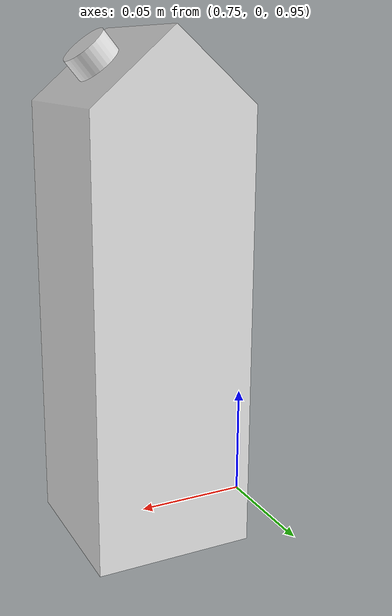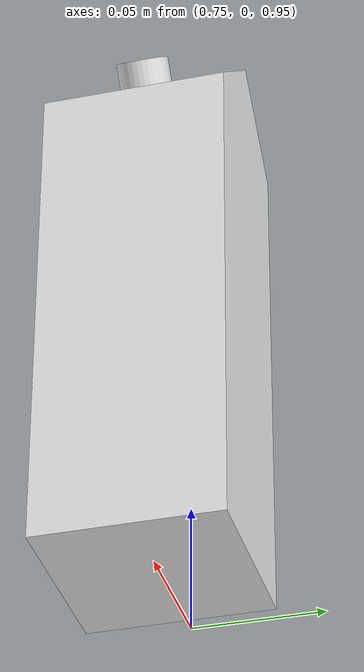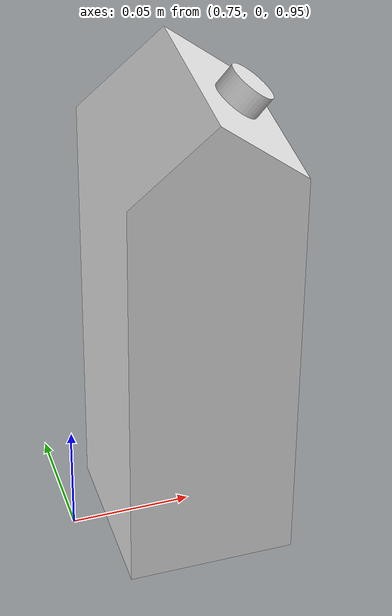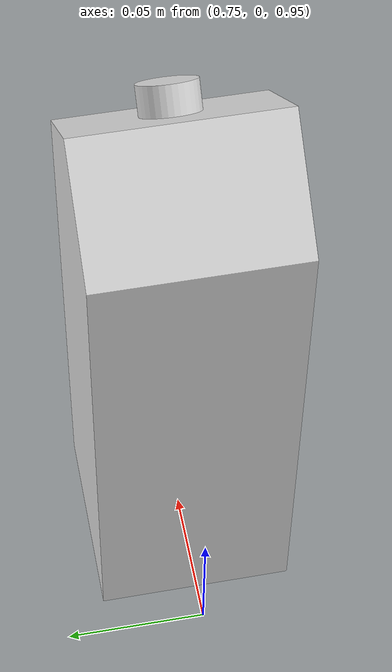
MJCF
<mujoco model="milk_box">
    <compiler angle="radian" autolimits="true" />
    <default>
        <default class="milk_box_collision">
            <geom rgba="0.9 0.9 0.9 1.0" friction="0.7" solimp="0.95 0.99 0.001" solref="0.004 1"/>
        </default>
    </default>
    <asset>
        <mesh name="UCX_MilkBox_001" file="./meshes/UCX_MilkBox_001.stl" />
        <mesh name="UCX_MilkBox_002" file="./meshes/UCX_MilkBox_002.stl" />
    </asset>

    <worldbody>
        <body name="milk_box" pos="0.8 0 1.04">
            <freejoint />
            <inertial mass="0.01" pos="0 0 0.008011753670871258" quat="0.9999994039535522 0.0 0.0010670736664906144 0.0" diaginertia="0.00004000849090516567 0.00003987141884863377 0.000008067898452281952"/>
            <geom name="UCX_MilkBox_001" type="mesh" mesh="UCX_MilkBox_001" class="milk_box_collision"/>
            <geom name="UCX_MilkBox_002" type="box" pos="0 0 0" size="0.036 0.036 0.095" class="milk_box_collision" rgba="1 0 0 0"/>
            <geom name="UCX_MilkBox_003" type="mesh" mesh="UCX_MilkBox_002" class="milk_box_collision"/>
        </body>
    </worldbody>
</mujoco>
